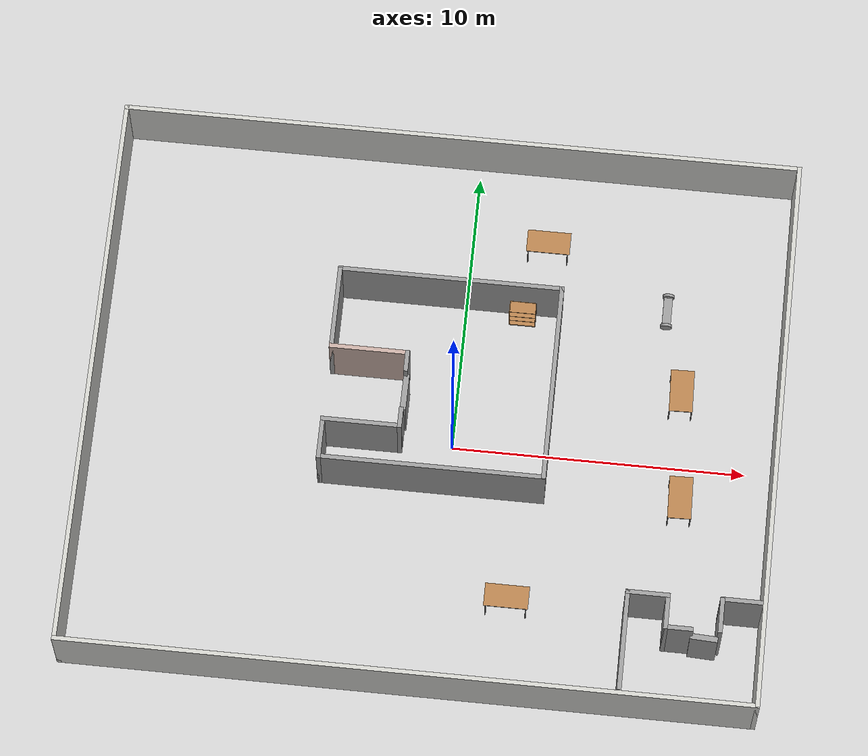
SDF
<sdf version="1.6">
 <world name="default">
  <model name="ground_plane">
   <static>1</static>
   <link name="link">
    <collision name="collision">
     <geometry><plane><normal>0 0 1</normal><size>100 100</size></plane></geometry>
     <surface>
      <contact><collide_bitmask>65535</collide_bitmask></contact>
      <friction><ode><mu>100</mu><mu2>50</mu2></ode></friction>
     </surface>
    </collision>
    <visual name="visual">
     <cast_shadows>0</cast_shadows>
     <geometry><plane><normal>0 0 1</normal><size>100 100</size></plane></geometry>
     <material>
      <script><uri>file://media/materials/scripts/gazebo.material</uri><name>Gazebo/Grey</name></script>
     </material>
    </visual>
   </link>
  </model>
  <model name="building">
   <pose>-0.722 0.805997 0 0 -0 0</pose>
   <link name="Door_0">
    <collision name="Door_0_Collision">
     <geometry><box><size>1.28749 0.2 2</size></box></geometry>
     <pose>0 0 1 0 -0 0</pose>
    </collision>
    <visual name="Door_0_Visual">
     <pose>0 0 1 0 -0 0</pose>
     <geometry><box><size>1.28749 0.2 2</size></box></geometry>
     <material>
      <script><uri>file://media/materials/scripts/gazebo.material</uri><name>Gazebo/Grey</name></script>
     </material>
    </visual>
    <pose>-1.03517 0.324293 0 0 0 -1.57581</pose>
   </link>
   <link name="Door_1">
    <collision name="Door_1_Collision">
     <geometry><box><size>0.932677 0.2 2</size></box></geometry>
     <pose>0 0 1 0 -0 0</pose>
    </collision>
    <visual name="Door_1_Visual">
     <pose>0 0 1 0 -0 0</pose>
     <geometry><box><size>0.932677 0.2 2</size></box></geometry>
     <material>
      <script><uri>file://media/materials/scripts/gazebo.material</uri><name>Gazebo/Grey</name></script>
     </material>
    </visual>
    <pose>9.75351 -7.35998 0 0 0 -0.048775</pose>
   </link>
   <link name="Wall_11">
    <collision name="Wall_11_Collision">
     <geometry><box><size>7.75 0.15 2.5</size></box></geometry>
     <pose>0 0 1.25 0 -0 0</pose>
    </collision>
    <visual name="Wall_11_Visual">
     <pose>0 0 1.25 0 -0 0</pose>
     <geometry><box><size>7.75 0.15 2.5</size></box></geometry>
     <material>
      <script><uri>file://media/materials/scripts/gazebo.material</uri><name>Gazebo/Grey</name></script>
      <ambient>1 1 1 1</ambient>
     </material>
     <meta><layer>0</layer></meta>
    </visual>
    <pose>0.135 -2.427 0 0 -0 0</pose>
   </link>
   <link name="Wall_12">
    <collision name="Wall_12_Collision">
     <geometry><box><size>7 0.15 2.5</size></box></geometry>
     <pose>0 0 1.25 0 -0 0</pose>
    </collision>
    <visual name="Wall_12_Visual">
     <pose>0 0 1.25 0 -0 0</pose>
     <geometry><box><size>7 0.15 2.5</size></box></geometry>
     <material>
      <script><uri>file://media/materials/scripts/gazebo.material</uri><name>Gazebo/Grey</name></script>
      <ambient>1 1 1 1</ambient>
     </material>
     <meta><layer>0</layer></meta>
    </visual>
    <pose>3.935 0.998 0 0 -0 1.5708</pose>
   </link>
   <link name="Wall_13">
    <collision name="Wall_13_Collision">
     <geometry><box><size>7.75 0.15 2.5</size></box></geometry>
     <pose>0 0 1.25 0 -0 0</pose>
    </collision>
    <visual name="Wall_13_Visual">
     <pose>0 0 1.25 0 -0 0</pose>
     <geometry><box><size>7.75 0.15 2.5</size></box></geometry>
     <material>
      <script><uri>file://media/materials/scripts/gazebo.material</uri><name>Gazebo/Grey</name></script>
      <ambient>1 1 1 1</ambient>
     </material>
     <meta><layer>0</layer></meta>
    </visual>
    <pose>0.135 4.423 0 0 -0 3.14159</pose>
   </link>
   <link name="Wall_15">
    <collision name="Wall_15_Collision">
     <geometry><box><size>3 0.15 2.5</size></box></geometry>
     <pose>0 0 1.25 0 -0 0</pose>
    </collision>
    <visual name="Wall_15_Visual">
     <pose>0 0 1.25 0 -0 0</pose>
     <geometry><box><size>3 0.15 2.5</size></box></geometry>
     <material>
      <script><uri>file://media/materials/scripts/gazebo.material</uri><name>Gazebo/Grey</name></script>
      <ambient>1 1 1 1</ambient>
     </material>
     <meta><layer>0</layer></meta>
    </visual>
    <pose>-3.665 2.998 0 0 0 -1.5708</pose>
   </link>
   <link name="Wall_16">
    <collision name="Wall_16_Collision">
     <geometry><box><size>2.75 0.15 2.5</size></box></geometry>
     <pose>0 0 1.25 0 -0 0</pose>
    </collision>
    <visual name="Wall_16_Visual">
     <pose>0 0 1.25 0 -0 0</pose>
     <geometry><box><size>2.75 0.15 2.5</size></box></geometry>
     <material>
      <script><uri>file://media/materials/scripts/gazebo.material</uri><name>Gazebo/Grey</name></script>
      <ambient>0.760784 0.662745 0.627451 1</ambient>
     </material>
     <meta><layer>0</layer></meta>
    </visual>
    <pose>-2.365 1.573 0 0 -0 0</pose>
   </link>
   <link name="Wall_17">
    <collision name="Wall_17_Collision">
     <geometry><box><size>0.75 0.15 2.5</size></box></geometry>
     <pose>0 0 1.25 0 -0 0</pose>
    </collision>
    <visual name="Wall_17_Visual">
     <pose>0 0 1.25 0 -0 0</pose>
     <geometry><box><size>0.75 0.15 2.5</size></box></geometry>
     <material>
      <script><uri>file://media/materials/scripts/gazebo.material</uri><name>Gazebo/Grey</name></script>
      <ambient>1 1 1 1</ambient>
     </material>
     <meta><layer>0</layer></meta>
    </visual>
    <pose>-1.065 1.273 0 0 0 -1.5708</pose>
   </link>
   <link name="Wall_19">
    <collision name="Wall_19_Collision">
     <geometry><box><size>1.5 0.15 2.5</size></box></geometry>
     <pose>0 0 1.25 0 -0 0</pose>
    </collision>
    <visual name="Wall_19_Visual">
     <pose>0 0 1.25 0 -0 0</pose>
     <geometry><box><size>1.5 0.15 2.5</size></box></geometry>
     <material>
      <script><uri>file://media/materials/scripts/gazebo.material</uri><name>Gazebo/Grey</name></script>
      <ambient>1 1 1 1</ambient>
     </material>
     <meta><layer>0</layer></meta>
    </visual>
    <pose>-3.665 -1.752 0 0 -0 1.5708</pose>
   </link>
   <link name="Wall_20">
    <collision name="Wall_20_Collision">
     <geometry><box><size>2.75 0.15 2.5</size></box></geometry>
     <pose>0 0 1.25 0 -0 0</pose>
    </collision>
    <visual name="Wall_20_Visual">
     <pose>0 0 1.25 0 -0 0</pose>
     <geometry><box><size>2.75 0.15 2.5</size></box></geometry>
     <material>
      <script><uri>file://media/materials/scripts/gazebo.material</uri><name>Gazebo/Grey</name></script>
      <ambient>1 1 1 1</ambient>
     </material>
     <meta><layer>0</layer></meta>
    </visual>
    <pose>-2.365 -1.077 0 0 -0 0</pose>
   </link>
   <link name="Wall_21">
    <collision name="Wall_21_Collision">
     <geometry><box><size>0.75 0.15 2.5</size></box></geometry>
     <pose>0 0 1.25 0 -0 0</pose>
    </collision>
    <visual name="Wall_21_Visual">
     <pose>0 0 1.25 0 -0 0</pose>
     <geometry><box><size>0.75 0.15 2.5</size></box></geometry>
     <material>
      <script><uri>file://media/materials/scripts/gazebo.material</uri><name>Gazebo/Grey</name></script>
      <ambient>1 1 1 1</ambient>
     </material>
     <meta><layer>0</layer></meta>
    </visual>
    <pose>-1.06498 -0.777074 0 0 -0 1.57073</pose>
   </link>
   <link name="Wall_4">
    <collision name="Wall_4_Collision">
     <geometry><box><size>19.5 0.15 2.5</size></box></geometry>
     <pose>0 0 1.25 0 -0 0</pose>
    </collision>
    <visual name="Wall_4_Visual">
     <pose>0 0 1.25 0 -0 0</pose>
     <geometry><box><size>19.5 0.15 2.5</size></box></geometry>
     <material>
      <script><uri>file://media/materials/scripts/gazebo.material</uri><name>Gazebo/CeilingTiled</name></script>
      <ambient>0.435294 0.796078 0.67451 1</ambient>
     </material>
     <meta><layer>0</layer></meta>
    </visual>
    <pose>-11.675 0 0 0 0 -1.5708</pose>
   </link>
   <link name="Wall_5">
    <collision name="Wall_5_Collision">
     <geometry><box><size>23.5 0.15 2.5</size></box></geometry>
     <pose>0 0 1.25 0 -0 0</pose>
    </collision>
    <visual name="Wall_5_Visual">
     <pose>0 0 1.25 0 -0 0</pose>
     <geometry><box><size>23.5 0.15 2.5</size></box></geometry>
     <material>
      <script><uri>file://media/materials/scripts/gazebo.material</uri><name>Gazebo/CeilingTiled</name></script>
      <ambient>0.435294 0.796078 0.67451 1</ambient>
     </material>
     <meta><layer>0</layer></meta>
    </visual>
    <pose>0 -9.675 0 0 -0 0</pose>
   </link>
   <link name="Wall_51">
    <collision name="Wall_51_Collision">
     <geometry><box><size>3.5 0.15 2.5</size></box></geometry>
     <pose>0 0 1.25 0 -0 0</pose>
    </collision>
    <visual name="Wall_51_Visual">
     <pose>0 0 1.25 0 -0 0</pose>
     <geometry><box><size>3.5 0.15 2.5</size></box></geometry>
     <material>
      <script><uri>file://media/materials/scripts/gazebo.material</uri><name>Gazebo/Grey</name></script>
      <ambient>1 1 1 1</ambient>
     </material>
     <meta><layer>0</layer></meta>
    </visual>
    <pose>7.08944 -7.83193 0 0 -0 1.5708</pose>
   </link>
   <link name="Wall_52">
    <collision name="Wall_52_Collision">
     <geometry><box><size>1.5 0.15 2.5</size></box></geometry>
     <pose>0 0 1.25 0 -0 0</pose>
    </collision>
    <visual name="Wall_52_Visual">
     <pose>0 0 1.25 0 -0 0</pose>
     <geometry><box><size>1.5 0.15 2.5</size></box></geometry>
     <material>
      <script><uri>file://media/materials/scripts/gazebo.material</uri><name>Gazebo/Grey</name></script>
      <ambient>1 1 1 1</ambient>
     </material>
     <meta><layer>0</layer></meta>
    </visual>
    <pose>7.76444 -6.15693 0 0 -0 0</pose>
   </link>
   <link name="Wall_53">
    <collision name="Wall_53_Collision">
     <geometry><box><size>1.25 0.15 2.5</size></box></geometry>
     <pose>0 0 1.25 0 -0 0</pose>
    </collision>
    <visual name="Wall_53_Visual">
     <pose>0 0 1.25 0 -0 0</pose>
     <geometry><box><size>1.25 0.15 2.5</size></box></geometry>
     <material>
      <script><uri>file://media/materials/scripts/gazebo.material</uri><name>Gazebo/Grey</name></script>
      <ambient>1 1 1 1</ambient>
     </material>
     <meta><layer>0</layer></meta>
    </visual>
    <pose>8.43944 -6.70693 0 0 0 -1.5708</pose>
   </link>
   <link name="Wall_54">
    <collision name="Wall_54_Collision">
     <geometry><box><size>1 0.15 2.5</size></box></geometry>
     <pose>0 0 1.25 0 -0 0</pose>
    </collision>
    <visual name="Wall_54_Visual">
     <pose>0 0 1.25 0 -0 0</pose>
     <geometry><box><size>1 0.15 2.5</size></box></geometry>
     <material>
      <script><uri>file://media/materials/scripts/gazebo.material</uri><name>Gazebo/Grey</name></script>
      <ambient>1 1 1 1</ambient>
     </material>
     <meta><layer>0</layer></meta>
    </visual>
    <pose>8.86444 -7.25693 0 0 -0 0</pose>
   </link>
   <link name="Wall_56">
    <collision name="Wall_56_Collision">
     <geometry><box><size>1.5 0.15 2.5</size></box></geometry>
     <pose>0 0 1.25 0 -0 0</pose>
    </collision>
    <visual name="Wall_56_Visual">
     <pose>0 0 1.25 0 -0 0</pose>
     <geometry><box><size>1.5 0.15 2.5</size></box></geometry>
     <material>
      <script><uri>file://media/materials/scripts/gazebo.material</uri><name>Gazebo/Grey</name></script>
      <ambient>1 1 1 1</ambient>
     </material>
     <meta><layer>0</layer></meta>
    </visual>
    <pose>10.9273 -6.11068 0 0 -0 3.14159</pose>
   </link>
   <link name="Wall_57">
    <collision name="Wall_57_Collision">
     <geometry><box><size>1.25 0.15 2.5</size></box></geometry>
     <pose>0 0 1.25 0 -0 0</pose>
    </collision>
    <visual name="Wall_57_Visual">
     <pose>0 0 1.25 0 -0 0</pose>
     <geometry><box><size>1.25 0.15 2.5</size></box></geometry>
     <material>
      <script><uri>file://media/materials/scripts/gazebo.material</uri><name>Gazebo/Grey</name></script>
      <ambient>1 1 1 1</ambient>
     </material>
     <meta><layer>0</layer></meta>
    </visual>
    <pose>10.2523 -6.66068 0 0 0 -1.5708</pose>
   </link>
   <link name="Wall_6">
    <collision name="Wall_6_Collision">
     <geometry><box><size>19.5 0.15 2.5</size></box></geometry>
     <pose>0 0 1.25 0 -0 0</pose>
    </collision>
    <visual name="Wall_6_Visual">
     <pose>0 0 1.25 0 -0 0</pose>
     <geometry><box><size>19.5 0.15 2.5</size></box></geometry>
     <material>
      <script><uri>file://media/materials/scripts/gazebo.material</uri><name>Gazebo/CeilingTiled</name></script>
      <ambient>0.435294 0.796078 0.67451 1</ambient>
     </material>
     <meta><layer>0</layer></meta>
    </visual>
    <pose>11.675 0 0 0 -0 1.5708</pose>
   </link>
   <link name="Wall_7">
    <collision name="Wall_7_Collision">
     <geometry><box><size>23.5 0.15 2.5</size></box></geometry>
     <pose>0 0 1.25 0 -0 0</pose>
    </collision>
    <visual name="Wall_7_Visual">
     <pose>0 0 1.25 0 -0 0</pose>
     <geometry><box><size>23.5 0.15 2.5</size></box></geometry>
     <material>
      <script><uri>file://media/materials/scripts/gazebo.material</uri><name>Gazebo/CeilingTiled</name></script>
      <ambient>0.435294 0.796078 0.67451 1</ambient>
     </material>
     <meta><layer>0</layer></meta>
    </visual>
    <pose>0 9.675 0 0 -0 3.14159</pose>
   </link>
   <static>1</static>
  </model>
  <model name="bookshelf">
   <static>1</static>
   <link name="link">
    <inertial><mass>1</mass></inertial>
    <collision name="back">
     <pose>0 0.005 0.6 0 -0 0</pose>
     <geometry><box><size>0.9 0.01 1.2</size></box></geometry>
    </collision>
    <visual name="visual1">
     <pose>0 0.005 0.6 0 -0 0</pose>
     <geometry><box><size>0.9 0.01 1.2</size></box></geometry>
     <material>
      <script><uri>file://media/materials/scripts/gazebo.material</uri><name>Gazebo/Wood</name></script>
     </material>
    </visual>
    <collision name="left_side">
     <pose>0.45 -0.195 0.6 0 -0 0</pose>
     <geometry><box><size>0.02 0.4 1.2</size></box></geometry>
    </collision>
    <visual name="visual2">
     <pose>0.45 -0.195 0.6 0 -0 0</pose>
     <geometry><box><size>0.02 0.4 1.2</size></box></geometry>
     <material>
      <script><uri>file://media/materials/scripts/gazebo.material</uri><name>Gazebo/Wood</name></script>
     </material>
    </visual>
    <collision name="right_side">
     <pose>-0.45 -0.195 0.6 0 -0 0</pose>
     <geometry><box><size>0.02 0.4 1.2</size></box></geometry>
    </collision>
    <visual name="visual3">
     <pose>-0.45 -0.195 0.6 0 -0 0</pose>
     <geometry><box><size>0.02 0.4 1.2</size></box></geometry>
     <material>
      <script><uri>file://media/materials/scripts/gazebo.material</uri><name>Gazebo/Wood</name></script>
     </material>
    </visual>
    <collision name="bottom">
     <pose>0 -0.195 0.03 0 -0 0</pose>
     <geometry><box><size>0.88 0.4 0.06</size></box></geometry>
    </collision>
    <visual name="visual4">
     <pose>0 -0.195 0.03 0 -0 0</pose>
     <geometry><box><size>0.88 0.4 0.06</size></box></geometry>
     <material>
      <script><uri>file://media/materials/scripts/gazebo.material</uri><name>Gazebo/Wood</name></script>
     </material>
    </visual>
    <collision name="top">
     <pose>0 -0.195 1.19 0 -0 0</pose>
     <geometry><box><size>0.88 0.4 0.02</size></box></geometry>
    </collision>
    <visual name="visual5">
     <pose>0 -0.195 1.19 0 -0 0</pose>
     <geometry><box><size>0.88 0.4 0.02</size></box></geometry>
     <material>
      <script><uri>file://media/materials/scripts/gazebo.material</uri><name>Gazebo/Wood</name></script>
     </material>
    </visual>
    <collision name="low_shelf">
     <pose>0 -0.195 0.43 0 -0 0</pose>
     <geometry><box><size>0.88 0.4 0.02</size></box></geometry>
    </collision>
    <visual name="visual6">
     <pose>0 -0.195 0.43 0 -0 0</pose>
     <geometry><box><size>0.88 0.4 0.02</size></box></geometry>
     <material>
      <script><uri>file://media/materials/scripts/gazebo.material</uri><name>Gazebo/Wood</name></script>
     </material>
    </visual>
    <collision name="high_shelf">
     <pose>0 -0.195 0.8 0 -0 0</pose>
     <geometry><box><size>0.88 0.4 0.02</size></box></geometry>
    </collision>
    <visual name="visual7">
     <pose>0 -0.195 0.8 0 -0 0</pose>
     <geometry><box><size>0.88 0.4 0.02</size></box></geometry>
     <material>
      <script><uri>file://media/materials/scripts/gazebo.material</uri><name>Gazebo/Wood</name></script>
     </material>
    </visual>
   </link>
   <pose>1.9332 5.1179 0 0 -0 0</pose>
  </model>
  <model name="table">
   <static>1</static>
   <link name="link">
    <collision name="surface">
     <pose>0 0 1 0 -0 0</pose>
     <geometry><box><size>1.5 0.8 0.03</size></box></geometry>
     <surface><friction><ode><mu>0.6</mu><mu2>0.6</mu2></ode></friction></surface>
    </collision>
    <visual name="visual1">
     <pose>0 0 1 0 -0 0</pose>
     <geometry><box><size>1.5 0.8 0.03</size></box></geometry>
     <material>
      <script><uri>file://media/materials/scripts/gazebo.material</uri><name>Gazebo/Wood</name></script>
     </material>
    </visual>
    <collision name="front_left_leg">
     <pose>0.68 0.38 0.5 0 -0 0</pose>
     <geometry><cylinder><radius>0.02</radius><length>1</length></cylinder></geometry>
    </collision>
    <visual name="front_left_leg">
     <pose>0.68 0.38 0.5 0 -0 0</pose>
     <geometry><cylinder><radius>0.02</radius><length>1</length></cylinder></geometry>
     <material>
      <script><uri>file://media/materials/scripts/gazebo.material</uri><name>Gazebo/Grey</name></script>
     </material>
    </visual>
    <collision name="front_right_leg">
     <pose>0.68 -0.38 0.5 0 -0 0</pose>
     <geometry><cylinder><radius>0.02</radius><length>1</length></cylinder></geometry>
    </collision>
    <visual name="front_right_leg">
     <pose>0.68 -0.38 0.5 0 -0 0</pose>
     <geometry><cylinder><radius>0.02</radius><length>1</length></cylinder></geometry>
     <material>
      <script><uri>file://media/materials/scripts/gazebo.material</uri><name>Gazebo/Grey</name></script>
     </material>
    </visual>
    <collision name="back_right_leg">
     <pose>-0.68 -0.38 0.5 0 -0 0</pose>
     <geometry><cylinder><radius>0.02</radius><length>1</length></cylinder></geometry>
    </collision>
    <visual name="back_right_leg">
     <pose>-0.68 -0.38 0.5 0 -0 0</pose>
     <geometry><cylinder><radius>0.02</radius><length>1</length></cylinder></geometry>
     <material>
      <script><uri>file://media/materials/scripts/gazebo.material</uri><name>Gazebo/Grey</name></script>
     </material>
    </visual>
    <collision name="back_left_leg">
     <pose>-0.68 0.38 0.5 0 -0 0</pose>
     <geometry><cylinder><radius>0.02</radius><length>1</length></cylinder></geometry>
    </collision>
    <visual name="back_left_leg">
     <pose>-0.68 0.38 0.5 0 -0 0</pose>
     <geometry><cylinder><radius>0.02</radius><length>1</length></cylinder></geometry>
     <material>
      <script><uri>file://media/materials/scripts/gazebo.material</uri><name>Gazebo/Grey</name></script>
     </material>
    </visual>
   </link>
   <pose>2.35411 -5.44146 0 0 -0 0</pose>
  </model>
  <model name="table_clone_0_clone_clone_clone">
   <static>1</static>
   <link name="link">
    <collision name="surface">
     <pose>0 0 1 0 -0 0</pose>
     <geometry><box><size>1.5 0.8 0.03</size></box></geometry>
     <surface><friction><ode><mu>0.6</mu><mu2>0.6</mu2></ode></friction></surface>
    </collision>
    <visual name="visual1">
     <pose>0 0 1 0 -0 0</pose>
     <geometry><box><size>1.5 0.8 0.03</size></box></geometry>
     <material>
      <script><uri>file://media/materials/scripts/gazebo.material</uri><name>Gazebo/Wood</name></script>
     </material>
    </visual>
    <collision name="front_left_leg">
     <pose>0.68 0.38 0.5 0 -0 0</pose>
     <geometry><cylinder><radius>0.02</radius><length>1</length></cylinder></geometry>
    </collision>
    <visual name="front_left_leg">
     <pose>0.68 0.38 0.5 0 -0 0</pose>
     <geometry><cylinder><radius>0.02</radius><length>1</length></cylinder></geometry>
     <material>
      <script><uri>file://media/materials/scripts/gazebo.material</uri><name>Gazebo/Grey</name></script>
     </material>
    </visual>
    <collision name="front_right_leg">
     <pose>0.68 -0.38 0.5 0 -0 0</pose>
     <geometry><cylinder><radius>0.02</radius><length>1</length></cylinder></geometry>
    </collision>
    <visual name="front_right_leg">
     <pose>0.68 -0.38 0.5 0 -0 0</pose>
     <geometry><cylinder><radius>0.02</radius><length>1</length></cylinder></geometry>
     <material>
      <script><uri>file://media/materials/scripts/gazebo.material</uri><name>Gazebo/Grey</name></script>
     </material>
    </visual>
    <collision name="back_right_leg">
     <pose>-0.68 -0.38 0.5 0 -0 0</pose>
     <geometry><cylinder><radius>0.02</radius><length>1</length></cylinder></geometry>
    </collision>
    <visual name="back_right_leg">
     <pose>-0.68 -0.38 0.5 0 -0 0</pose>
     <geometry><cylinder><radius>0.02</radius><length>1</length></cylinder></geometry>
     <material>
      <script><uri>file://media/materials/scripts/gazebo.material</uri><name>Gazebo/Grey</name></script>
     </material>
    </visual>
    <collision name="back_left_leg">
     <pose>-0.68 0.38 0.5 0 -0 0</pose>
     <geometry><cylinder><radius>0.02</radius><length>1</length></cylinder></geometry>
    </collision>
    <visual name="back_left_leg">
     <pose>-0.68 0.38 0.5 0 -0 0</pose>
     <geometry><cylinder><radius>0.02</radius><length>1</length></cylinder></geometry>
     <material>
      <script><uri>file://media/materials/scripts/gazebo.material</uri><name>Gazebo/Grey</name></script>
     </material>
    </visual>
   </link>
   <pose>7.61249 2.49601 0 9.2e-05 0.003589 -1.54506</pose>
  </model>
  <model name="table_clone_0_clone_clone_0">
   <static>1</static>
   <link name="link">
    <collision name="surface">
     <pose>0 0 1 0 -0 0</pose>
     <geometry><box><size>1.5 0.8 0.03</size></box></geometry>
     <surface><friction><ode><mu>0.6</mu><mu2>0.6</mu2></ode></friction></surface>
    </collision>
    <visual name="visual1">
     <pose>0 0 1 0 -0 0</pose>
     <geometry><box><size>1.5 0.8 0.03</size></box></geometry>
     <material>
      <script><uri>file://media/materials/scripts/gazebo.material</uri><name>Gazebo/Wood</name></script>
     </material>
    </visual>
    <collision name="front_left_leg">
     <pose>0.68 0.38 0.5 0 -0 0</pose>
     <geometry><cylinder><radius>0.02</radius><length>1</length></cylinder></geometry>
    </collision>
    <visual name="front_left_leg">
     <pose>0.68 0.38 0.5 0 -0 0</pose>
     <geometry><cylinder><radius>0.02</radius><length>1</length></cylinder></geometry>
     <material>
      <script><uri>file://media/materials/scripts/gazebo.material</uri><name>Gazebo/Grey</name></script>
     </material>
    </visual>
    <collision name="front_right_leg">
     <pose>0.68 -0.38 0.5 0 -0 0</pose>
     <geometry><cylinder><radius>0.02</radius><length>1</length></cylinder></geometry>
    </collision>
    <visual name="front_right_leg">
     <pose>0.68 -0.38 0.5 0 -0 0</pose>
     <geometry><cylinder><radius>0.02</radius><length>1</length></cylinder></geometry>
     <material>
      <script><uri>file://media/materials/scripts/gazebo.material</uri><name>Gazebo/Grey</name></script>
     </material>
    </visual>
    <collision name="back_right_leg">
     <pose>-0.68 -0.38 0.5 0 -0 0</pose>
     <geometry><cylinder><radius>0.02</radius><length>1</length></cylinder></geometry>
    </collision>
    <visual name="back_right_leg">
     <pose>-0.68 -0.38 0.5 0 -0 0</pose>
     <geometry><cylinder><radius>0.02</radius><length>1</length></cylinder></geometry>
     <material>
      <script><uri>file://media/materials/scripts/gazebo.material</uri><name>Gazebo/Grey</name></script>
     </material>
    </visual>
    <collision name="back_left_leg">
     <pose>-0.68 0.38 0.5 0 -0 0</pose>
     <geometry><cylinder><radius>0.02</radius><length>1</length></cylinder></geometry>
    </collision>
    <visual name="back_left_leg">
     <pose>-0.68 0.38 0.5 0 -0 0</pose>
     <geometry><cylinder><radius>0.02</radius><length>1</length></cylinder></geometry>
     <material>
      <script><uri>file://media/materials/scripts/gazebo.material</uri><name>Gazebo/Grey</name></script>
     </material>
    </visual>
   </link>
   <pose>7.87451 -1.35454 0 9.2e-05 0.003589 -1.54506</pose>
  </model>
  <model name="table_clone_1">
   <static>1</static>
   <link name="link">
    <collision name="surface">
     <pose>0 0 1 0 -0 0</pose>
     <geometry><box><size>1.5 0.8 0.03</size></box></geometry>
     <surface><friction><ode><mu>0.6</mu><mu2>0.6</mu2></ode></friction></surface>
    </collision>
    <visual name="visual1">
     <pose>0 0 1 0 -0 0</pose>
     <geometry><box><size>1.5 0.8 0.03</size></box></geometry>
     <material>
      <script><uri>file://media/materials/scripts/gazebo.material</uri><name>Gazebo/Wood</name></script>
     </material>
    </visual>
    <collision name="front_left_leg">
     <pose>0.68 0.38 0.5 0 -0 0</pose>
     <geometry><cylinder><radius>0.02</radius><length>1</length></cylinder></geometry>
    </collision>
    <visual name="front_left_leg">
     <pose>0.68 0.38 0.5 0 -0 0</pose>
     <geometry><cylinder><radius>0.02</radius><length>1</length></cylinder></geometry>
     <material>
      <script><uri>file://media/materials/scripts/gazebo.material</uri><name>Gazebo/Grey</name></script>
     </material>
    </visual>
    <collision name="front_right_leg">
     <pose>0.68 -0.38 0.5 0 -0 0</pose>
     <geometry><cylinder><radius>0.02</radius><length>1</length></cylinder></geometry>
    </collision>
    <visual name="front_right_leg">
     <pose>0.68 -0.38 0.5 0 -0 0</pose>
     <geometry><cylinder><radius>0.02</radius><length>1</length></cylinder></geometry>
     <material>
      <script><uri>file://media/materials/scripts/gazebo.material</uri><name>Gazebo/Grey</name></script>
     </material>
    </visual>
    <collision name="back_right_leg">
     <pose>-0.68 -0.38 0.5 0 -0 0</pose>
     <geometry><cylinder><radius>0.02</radius><length>1</length></cylinder></geometry>
    </collision>
    <visual name="back_right_leg">
     <pose>-0.68 -0.38 0.5 0 -0 0</pose>
     <geometry><cylinder><radius>0.02</radius><length>1</length></cylinder></geometry>
     <material>
      <script><uri>file://media/materials/scripts/gazebo.material</uri><name>Gazebo/Grey</name></script>
     </material>
    </visual>
    <collision name="back_left_leg">
     <pose>-0.68 0.38 0.5 0 -0 0</pose>
     <geometry><cylinder><radius>0.02</radius><length>1</length></cylinder></geometry>
    </collision>
    <visual name="back_left_leg">
     <pose>-0.68 0.38 0.5 0 -0 0</pose>
     <geometry><cylinder><radius>0.02</radius><length>1</length></cylinder></geometry>
     <material>
      <script><uri>file://media/materials/scripts/gazebo.material</uri><name>Gazebo/Grey</name></script>
     </material>
    </visual>
   </link>
   <pose>2.5897 7.51516 0 0 -0 0</pose>
  </model>
  <model name="wooden_car">
   <link name="link_1">
    <inertial>
     <mass>1</mass>
     <inertia>
      <ixx>0.166667</ixx>
      <ixy>0</ixy>
      <ixz>0</ixz>
      <iyy>0.166667</iyy>
      <iyz>0</iyz>
      <izz>0.166667</izz>
     </inertia>
    </inertial>
    <visual name="visual">
     <geometry><box><size>0.3 1 0.1</size></box></geometry>
     <material>
      <lighting>1</lighting>
      <script><uri>file://media/materials/scripts/gazebo.material</uri><name>Gazebo/Grey</name></script>
      <shader type="pixel"><normal_map>__default__</normal_map></shader>
      <ambient>0.3 0.3 0.3 1</ambient>
      <diffuse>0.7 0.7 0.7 1</diffuse>
      <specular>0.01 0.01 0.01 1</specular>
      <emissive>0 0 0 1</emissive>
     </material>
    </visual>
    <collision name="collision">
     <geometry><box><size>0.3 1 0.1</size></box></geometry>
     <surface>
      <friction>
       <ode><mu>1</mu><mu2>1</mu2><fdir1>0 0 0</fdir1><slip1>0</slip1><slip2>0</slip2></ode>
       <torsional>
        <coefficient>1</coefficient>
        <patch_radius>0</patch_radius>
        <surface_radius>0</surface_radius>
        <use_patch_radius>1</use_patch_radius>
        <ode><slip>0</slip></ode>
       </torsional>
      </friction>
      <bounce><restitution_coefficient>0</restitution_coefficient><threshold>1e+06</threshold></bounce>
      <contact>
       <collide_without_contact>0</collide_without_contact>
       <collide_without_contact_bitmask>1</collide_without_contact_bitmask>
       <collide_bitmask>1</collide_bitmask>
       <ode>
        <soft_cfm>0</soft_cfm>
        <soft_erp>0.2</soft_erp>
        <kp>1e+13</kp>
        <kd>1</kd>
        <max_vel>0.01</max_vel>
        <min_depth>0</min_depth>
       </ode>
       <bullet>
        <split_impulse>1</split_impulse>
        <split_impulse_penetration_threshold>-0.01</split_impulse_penetration_threshold>
        <soft_cfm>0</soft_cfm>
        <soft_erp>0.2</soft_erp>
        <kp>1e+13</kp>
        <kd>1</kd>
       </bullet>
      </contact>
     </surface>
    </collision>
   </link>
   <link name="link_3">
    <pose>0 -0.550019 0 1.5707 -0 0</pose>
    <inertial>
     <mass>1</mass>
     <inertia><ixx>0.145833</ixx><ixy>0</ixy><ixz>0</ixz><iyy>0.145833</iyy><iyz>0</iyz><izz>0.125</izz></inertia>
     <pose>0 0 0.2 1.5707 -0 0</pose>
    </inertial>
    <visual name="visual">
     <geometry><cylinder><radius>0.2</radius><length>0.1</length></cylinder></geometry>
     <material>
      <lighting>1</lighting>
      <script><uri>file://media/materials/scripts/gazebo.material</uri><name>Gazebo/Grey</name></script>
      <shader type="pixel"><normal_map>__default__</normal_map></shader>
      <ambient>0.3 0.3 0.3 1</ambient>
      <diffuse>0.7 0.7 0.7 1</diffuse>
      <specular>0.01 0.01 0.01 1</specular>
      <emissive>0 0 0 1</emissive>
     </material>
    </visual>
    <collision name="collision">
     <geometry><cylinder><radius>0.2</radius><length>0.1</length></cylinder></geometry>
     <surface>
      <friction>
       <ode><mu>1</mu><mu2>1</mu2><fdir1>0 0 0</fdir1><slip1>0</slip1><slip2>0</slip2></ode>
       <torsional>
        <coefficient>1</coefficient>
        <patch_radius>0</patch_radius>
        <surface_radius>0</surface_radius>
        <use_patch_radius>1</use_patch_radius>
        <ode><slip>0</slip></ode>
       </torsional>
      </friction>
      <bounce><restitution_coefficient>0</restitution_coefficient><threshold>1e+06</threshold></bounce>
      <contact>
       <collide_without_contact>0</collide_without_contact>
       <collide_without_contact_bitmask>1</collide_without_contact_bitmask>
       <collide_bitmask>1</collide_bitmask>
       <ode>
        <soft_cfm>0</soft_cfm>
        <soft_erp>0.2</soft_erp>
        <kp>1e+13</kp>
        <kd>1</kd>
        <max_vel>0.01</max_vel>
        <min_depth>0</min_depth>
       </ode>
       <bullet>
        <split_impulse>1</split_impulse>
        <split_impulse_penetration_threshold>-0.01</split_impulse_penetration_threshold>
        <soft_cfm>0</soft_cfm>
        <soft_erp>0.2</soft_erp>
        <kp>1e+13</kp>
        <kd>1</kd>
       </bullet>
      </contact>
     </surface>
    </collision>
   </link>
   <link name="link_3_clone">
    <pose>0 0.550019 0 1.5707 -0 0</pose>
    <inertial>
     <mass>1</mass>
     <inertia><ixx>0.145833</ixx><ixy>0</ixy><ixz>0</ixz><iyy>0.145833</iyy><iyz>0</iyz><izz>0.125</izz></inertia>
     <pose>0 0 0.2 1.5707 -0 0</pose>
    </inertial>
    <visual name="visual">
     <geometry><cylinder><radius>0.2</radius><length>0.1</length></cylinder></geometry>
     <material>
      <lighting>1</lighting>
      <script><uri>file://media/materials/scripts/gazebo.material</uri><name>Gazebo/Grey</name></script>
      <shader type="pixel"><normal_map>__default__</normal_map></shader>
      <ambient>0.3 0.3 0.3 1</ambient>
      <diffuse>0.7 0.7 0.7 1</diffuse>
      <specular>0.01 0.01 0.01 1</specular>
      <emissive>0 0 0 1</emissive>
     </material>
    </visual>
    <collision name="collision">
     <geometry><cylinder><radius>0.2</radius><length>0.1</length></cylinder></geometry>
     <surface>
      <friction>
       <ode><mu>1</mu><mu2>1</mu2><fdir1>0 0 0</fdir1><slip1>0</slip1><slip2>0</slip2></ode>
       <torsional>
        <coefficient>1</coefficient>
        <patch_radius>0</patch_radius>
        <surface_radius>0</surface_radius>
        <use_patch_radius>1</use_patch_radius>
        <ode><slip>0</slip></ode>
       </torsional>
      </friction>
      <bounce><restitution_coefficient>0</restitution_coefficient><threshold>1e+06</threshold></bounce>
      <contact>
       <collide_without_contact>0</collide_without_contact>
       <collide_without_contact_bitmask>1</collide_without_contact_bitmask>
       <collide_bitmask>1</collide_bitmask>
       <ode>
        <soft_cfm>0</soft_cfm>
        <soft_erp>0.2</soft_erp>
        <kp>1e+13</kp>
        <kd>1</kd>
        <max_vel>0.01</max_vel>
        <min_depth>0</min_depth>
       </ode>
       <bullet>
        <split_impulse>1</split_impulse>
        <split_impulse_penetration_threshold>-0.01</split_impulse_penetration_threshold>
        <soft_cfm>0</soft_cfm>
        <soft_erp>0.2</soft_erp>
        <kp>1e+13</kp>
        <kd>1</kd>
       </bullet>
      </contact>
     </surface>
    </collision>
   </link>
   <joint name="link_1_JOINT_0" type="revolute">
    <parent>link_1</parent>
    <child>link_3</child>
    <axis>
     <xyz>0 0 1</xyz>
     <use_parent_model_frame>0</use_parent_model_frame>
     <limit>
      <lower>-1.79769e+308</lower>
      <upper>1.79769e+308</upper>
      <effort>-1</effort>
      <velocity>-1</velocity>
     </limit>
     <dynamics>
      <spring_reference>0</spring_reference>
      <spring_stiffness>0</spring_stiffness>
      <damping>0</damping>
     </dynamics>
    </axis>
    <physics>
     <ode><limit><cfm>0</cfm><erp>0.2</erp></limit><suspension><cfm>0</cfm><erp>0.2</erp></suspension></ode>
    </physics>
   </joint>
   <joint name="link_1_JOINT_1" type="revolute">
    <parent>link_1</parent>
    <child>link_3_clone</child>
    <axis>
     <xyz>0 0 1</xyz>
     <use_parent_model_frame>0</use_parent_model_frame>
     <limit>
      <lower>-1.79769e+308</lower>
      <upper>1.79769e+308</upper>
      <effort>-1</effort>
      <velocity>-1</velocity>
     </limit>
     <dynamics>
      <spring_reference>0</spring_reference>
      <spring_stiffness>0</spring_stiffness>
      <damping>0</damping>
     </dynamics>
    </axis>
    <physics>
     <ode><limit><cfm>0</cfm><erp>0.2</erp></limit><suspension><cfm>0</cfm><erp>0.2</erp></suspension></ode>
    </physics>
   </joint>
   <static>0</static>
   <pose>6.89221 5.66978 0.200003 3e-06 -0.000233 -0.00015</pose>
  </model>
 </world>
</sdf>
